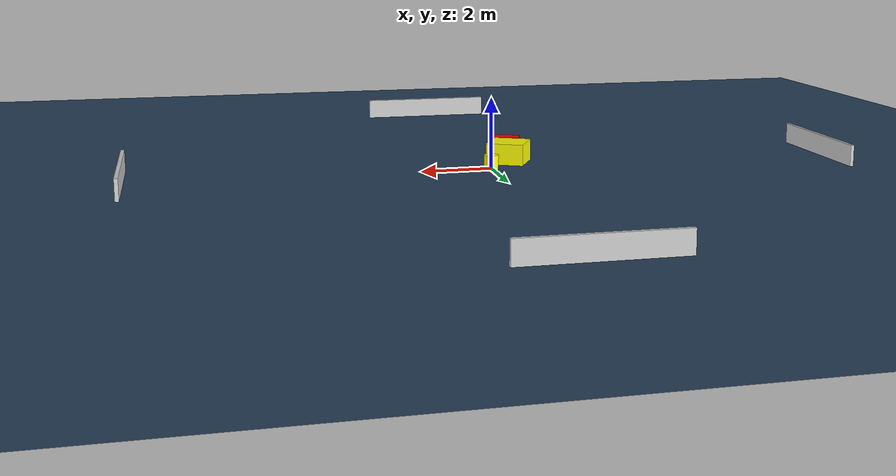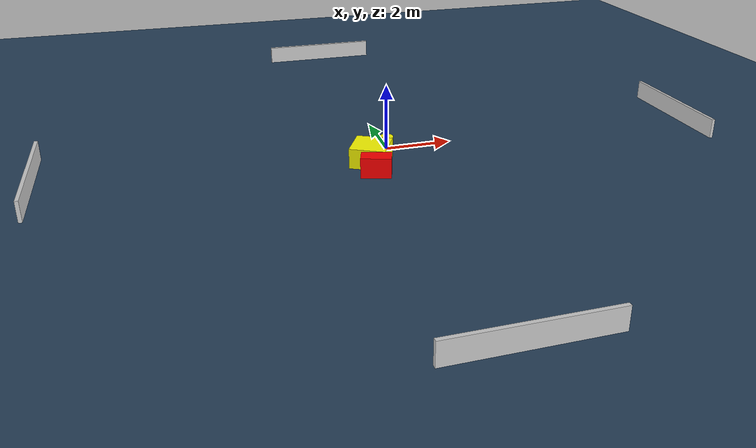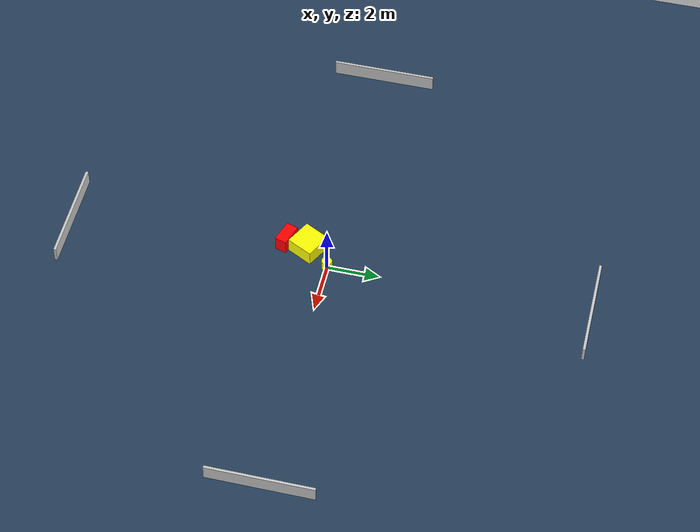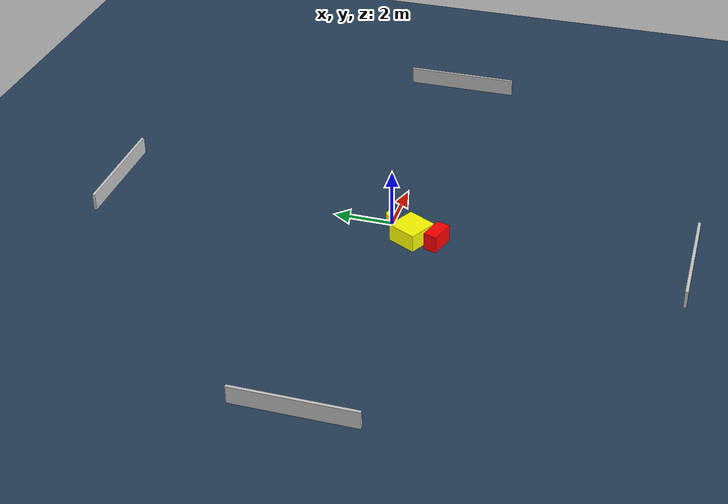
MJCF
<?xml version="1.0" ?>
<mujoco model="generated_environment">
  <option timestep="0.01" integrator="RK4" cone="elliptic"/>
  <default>
    <geom density="1"/>
  </default>
  <asset>
    <texture builtin="gradient" height="3072" name="skybox" rgb1="0.3 0.5 0.7" rgb2="0 0 0" type="skybox" width="512"/>
    <texture builtin="checker" height="300" name="groundplane" rgb1="0.2 0.3 0.4" rgb2="0.1 0.2 0.3" type="2d" width="300"/>
    <material name="groundplane" reflectance="0.2" texrepeat="5 5" texture="groundplane"/>
  </asset>
  <worldbody>
    <light dir="0 0 -1" directional="true" pos="0 0 1.5"/>
    <geom condim="3" friction="0.5 0.005 0.001" material="groundplane" name="floor" pos="0 0 0" size="0 0 0.05" type="plane"/>
    <body name="walls">
      <geom name="wall_1" condim="4" pos="-10.0 0.0 0.3" rgba="0.800000011920929 0.800000011920929 0.800000011920929 1.0" size="0.05 2.0 0.3" type="box"/>
      <geom name="wall_2" condim="4" pos="10.0 0.0 0.3" rgba="0.800000011920929 0.800000011920929 0.800000011920929 1.0" size="0.05 2.0 0.3" type="box"/>
      <geom name="wall_3" condim="4" pos="0.0 -10.0 0.3" rgba="0.800000011920929 0.800000011920929 0.800000011920929 1.0" size="2.0 0.05 0.3" type="box"/>
      <geom name="wall_4" condim="4" pos="0.0 10.0 0.3" rgba="0.800000011920929 0.800000011920929 0.800000011920929 1.0" size="2.0 0.05 0.3" type="box"/>
    </body>
    <body name="robot">
      <joint name="joint_x" type="slide" pos="0 0 0" axis="1 0 0"/>
      <joint name="joint_y" type="slide" pos="0 0 0" axis="0 1 0"/>
      <geom name="robot" type="cylinder" pos="0.0 0.0 0.2" size="0.2 0.2 0.0" mass="5.0" friction="1.0 0.005 0.0001" condim="4" rgba="1.0 1.0 0.0 1.0"/>
    </body>
    <body name="obstacle_1_movable">
      <geom name="obstacle_1_movable" condim="4" pos="-0.7212154193845195 -0.8868853166625223 0.3" euler="0 0 152.64636268063438" friction="0.0 0.005 0.001" rgba="1.0 1.0 0.0 1.0" size="0.529882654602974 0.5270088945308998 0.3" type="box" mass="0.1"/>
      <joint type="free"/>
    </body>
    <body name="obstacle_2_static">
      <geom name="obstacle_2_static" condim="4" pos="-0.8044539738325709 -1.7585804034379655 0.3" euler="0 0 162.51046669749877" friction="0.0 0.005 0.001" rgba="1.0 0.0 0.0 1.0" size="0.4327556360370329 0.2326652061095588 0.3" type="box"/>
    </body>
  </worldbody>
  <actuator>
    <motor name="actuator_x" joint="joint_x" gear="1" ctrlrange="-1 1"/>
    <motor name="actuator_y" joint="joint_y" gear="1" ctrlrange="-1 1"/>
  </actuator>
</mujoco>
